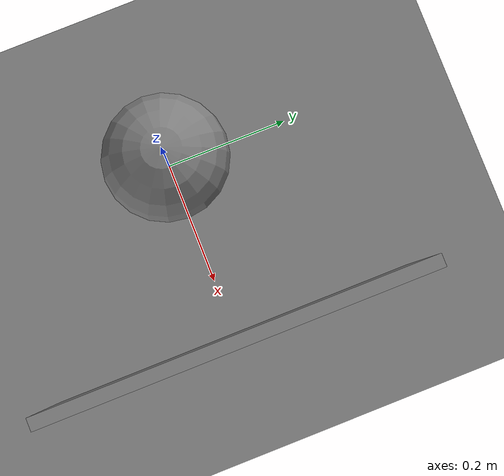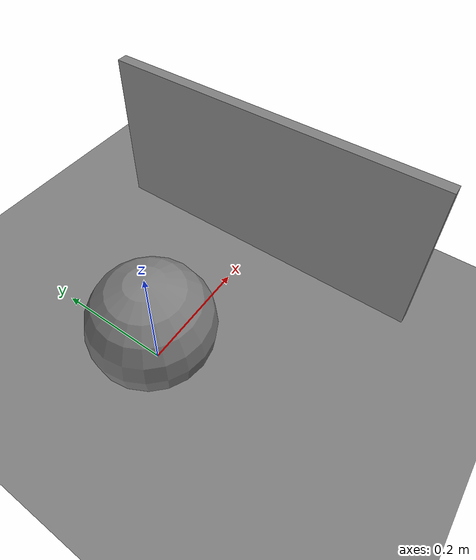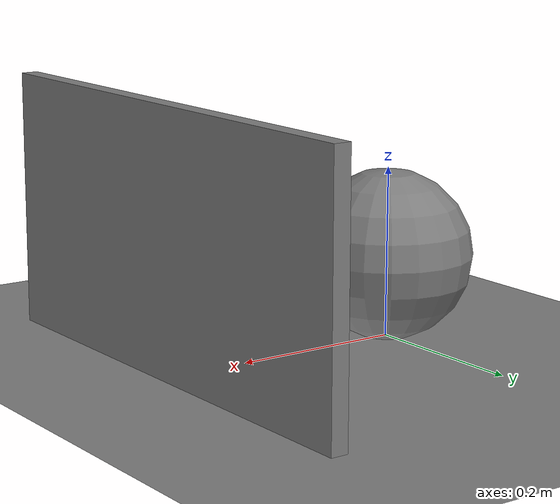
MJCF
<mujoco model="contact_scenario">
  <option gravity="0 0 -9.81" timestep="0.002"/>
  <worldbody>
    <geom name="floor" type="plane" size="5 5 0.1"
          friction="1 0.005 0.0001"/>
    <geom name="wall" type="box" pos="0.3 0 0.15" size="0.01 0.3 0.15"
          friction="0.8 0.005 0.0001"/>

    <body name="sphere" pos="0 0 0.098">
      <freejoint name="ball"/>
      <geom name="sphere_geom" type="sphere" size="0.1" mass="1.0"
            friction="1 0.005 0.0001"/>
    </body>
  </worldbody>
</mujoco>
